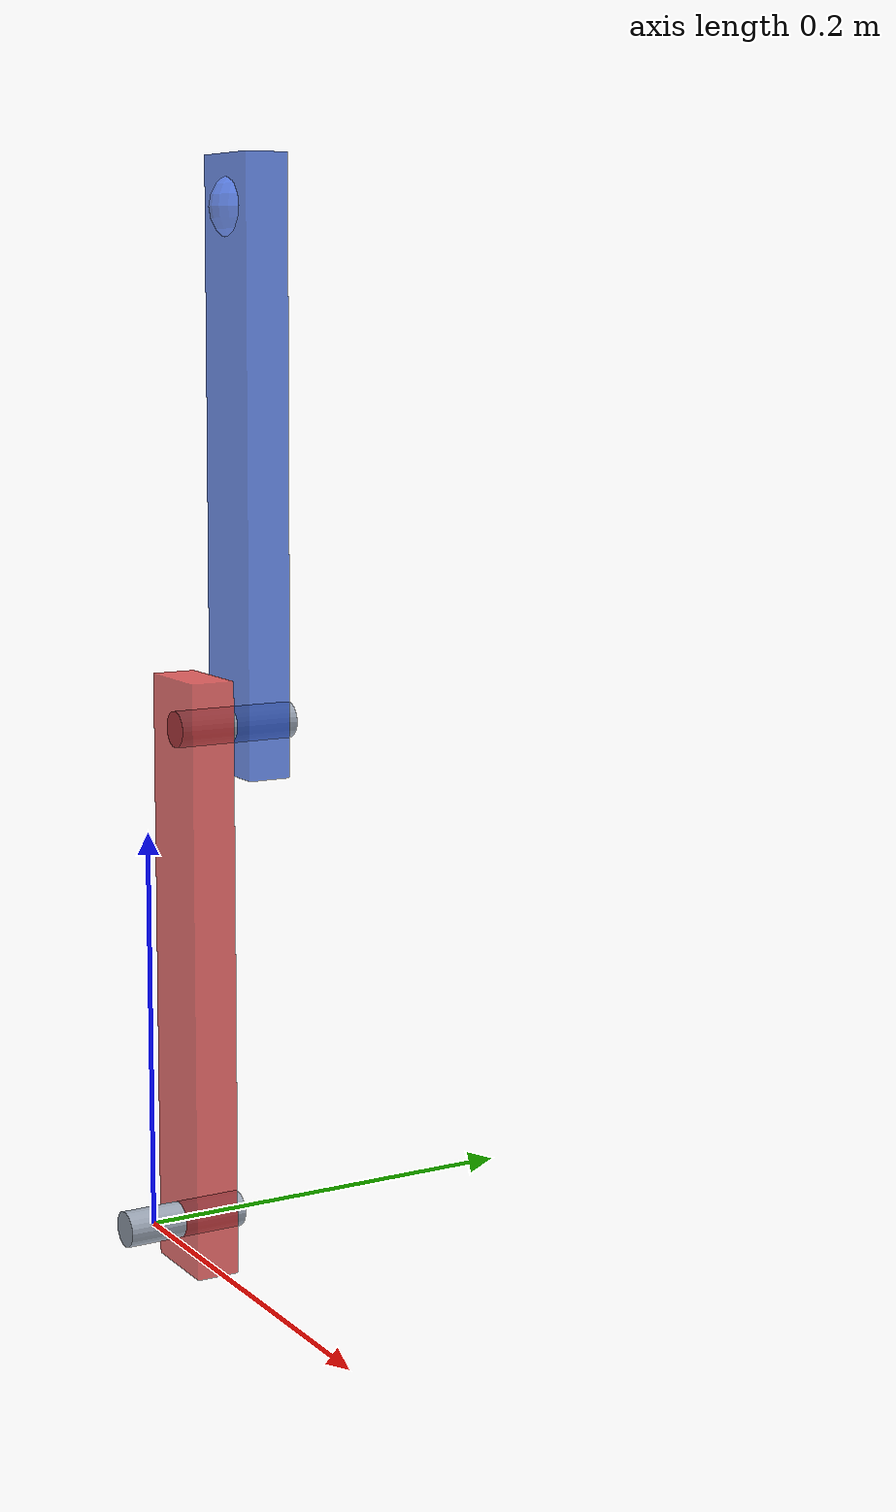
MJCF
<mujoco model="double_pendulum">

  <option gravity="0 0 -1.62" integrator="RK4" timestep="0.001"/>

  <visual>
    <headlight diffuse="0.55 0.55 0.55" ambient="0.30 0.30 0.30" specular="0.10 0.10 0.10"/>
    <global offwidth="1080" offheight="1920"/>
  </visual>

  <asset>
    <!-- DC Engineer shield logo — used as door backdrop texture -->
    <texture name="shield_tex" type="2d"
             file="../images/dc-engineer-logo-transparent.png"/>

    <material name="door_logo_mat" texture="shield_tex" texrepeat="1 1" rgba="1 1 1 1"/>

    <!-- Red plexiglass (link 1) -->
    <material name="link1_mat" rgba="0.88 0.16 0.16 0.72"
              reflectance="0.30" shininess="0.85"/>

    <!-- Blue plexiglass (link 2) -->
    <material name="link2_mat" rgba="0.16 0.36 0.92 0.72"
              reflectance="0.30" shininess="0.85"/>

    <!-- Polished steel hinge pins -->
    <material name="hinge_mat" rgba="0.62 0.66 0.72 1.00"
              reflectance="0.60" shininess="1.00"/>
  </asset>

  <worldbody>

    <!-- ── Static logo backdrop ────────────────────────────────────────── -->
    <body name="backdrop" pos="0 0 0.157">
      <geom name="door_logo" type="plane" size="0.628 0.628 0.1"
            pos="0 0 0" euler="90 180 0"
            material="door_logo_mat" rgba="0 0 0 0" contype="0" conaffinity="0"/>

    </body>

    <!-- ── Pendulum ────────────────────────────────────────────────────── -->
    <body name="pivot_mount">

      <!-- Top pivot pin -->
      <geom name="top_pin" type="cylinder" size="0.009 0.0314"
            pos="0 0.0157 0" euler="90 0 0" material="hinge_mat" rgba="0.62 0.66 0.72 1"
            density="0" contype="0" conaffinity="0"/>

      <!-- ── Link 1 (red plexiglass) ───────────────────────────────── -->
      <body name="link1" pos="0 0.025 0">
        <joint name="j1" type="hinge" axis="0 1 0"/>
        <geom name="bar1" type="box" size="0.022 0.011 0.15"
              pos="0 0 0.125" material="link1_mat" rgba="0.88 0.16 0.16 0.72"
              density="1180" contype="0" conaffinity="0"/>

        <!-- Mid hinge cylinder -->
        <geom name="mid_pin" type="cylinder" size="0.009 0.0314"
              pos="0 0.0212 0.25" euler="90 0 0" material="hinge_mat" rgba="0.62 0.66 0.72 1"
              density="0" contype="0" conaffinity="0"/>

        <!-- ── Link 2 (blue plexiglass) ──────────────────────────── -->
        <body name="link2" pos="0 0.0305 0.25">
          <joint name="j2" type="hinge" axis="0 1 0"/>

          <geom name="bar2" type="box" size="0.022 0.011 0.15"
                pos="0 0 0.125" material="link2_mat" rgba="0.16 0.36 0.92 0.72"
                density="1180" contype="0" conaffinity="0"/>

          <!-- End cap sphere at tip of link 2 -->
          <geom name="end_cap" type="sphere" size="0.018"
                pos="0 0 0.25" material="link2_mat" rgba="0.16 0.36 0.92 0.72"
                density="0" contype="0" conaffinity="0"/>

        </body>
      </body>
    </body>

  </worldbody>

</mujoco>
